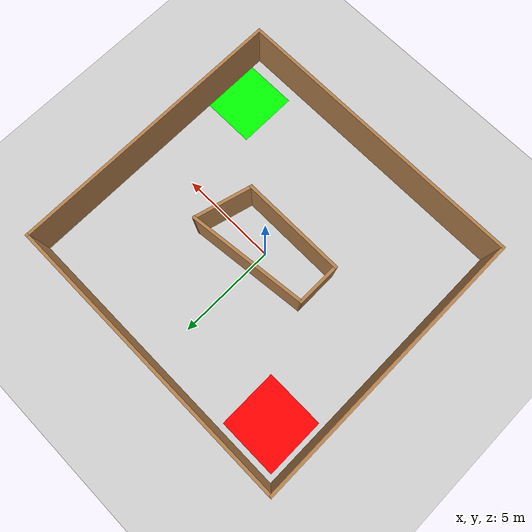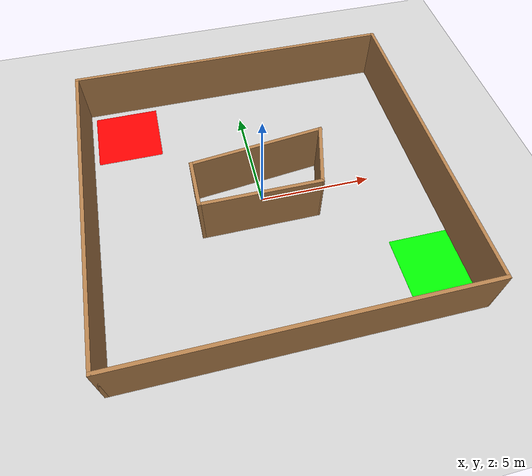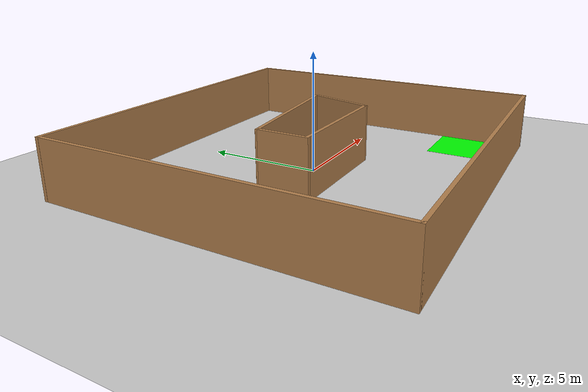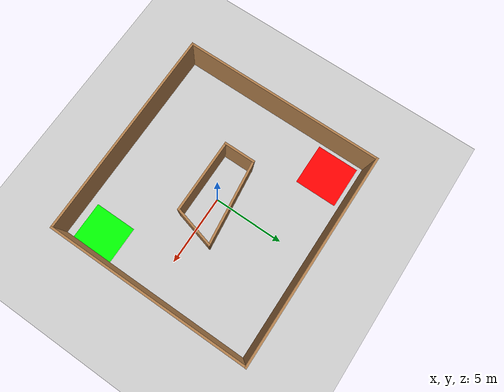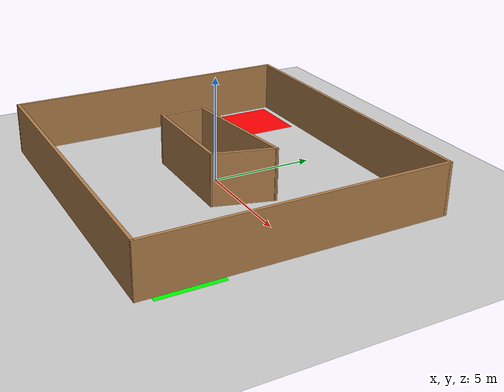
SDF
<sdf version="1.6">
 <world name="default">
  <light name="sun" type="directional">
   <pose>0 0 10 0 -0 0</pose>
   <diffuse>0.8 0.8 0.8 1</diffuse>
   <specular>0.1 0.1 0.1 1</specular>
   <attenuation>
    <range>1000</range>
    <constant>0.9</constant>
    <linear>0.01</linear>
    <quadratic>0.001</quadratic>
   </attenuation>
   <direction>-0.5 0.5 -1</direction>
  </light>
  <model name="ground_plane">
   <static>1</static>
   <link name="link">
    <collision name="collision">
     <geometry><plane><normal>0 0 1</normal><size>100 100</size></plane></geometry>
     <surface><friction><ode><mu>100</mu><mu2>50</mu2></ode></friction></surface>
    </collision>
    <visual name="visual">
     <cast_shadows>0</cast_shadows>
     <geometry><plane><normal>0 0 1</normal><size>100 100</size></plane></geometry>
     <material>
      <script><uri>file://media/materials/scripts/gazebo.material</uri><name>Gazebo/Grey</name></script>
     </material>
    </visual>
   </link>
  </model>
  <gravity>0 0 -9.8</gravity>
  <magnetic_field>6e-06 2.3e-05 -4.2e-05</magnetic_field>
  <atmosphere type="adiabatic"/>
  <physics name="default_physics" default="0" type="ode">
   <max_step_size>0.001</max_step_size>
   <real_time_factor>1</real_time_factor>
   <real_time_update_rate>1000</real_time_update_rate>
  </physics>
  <scene><ambient>0.4 0.4 0.4 1</ambient><background>0.7 0.7 0.7 1</background><shadows>1</shadows></scene>
  <spherical_coordinates>
   <surface_model>EARTH_WGS84</surface_model>
   <latitude_deg>0</latitude_deg>
   <longitude_deg>0</longitude_deg>
   <elevation>0</elevation>
   <heading_deg>0</heading_deg>
  </spherical_coordinates>
  <model name="pool">
   <pose>0.03268 0.020167 0 0 -0 0</pose>
   <link name="Wall_0">
    <collision name="Wall_0_Collision">
     <geometry><box><size>14.25 0.15 2.5</size></box></geometry>
     <pose>0 0 1.25 0 -0 0</pose>
    </collision>
    <visual name="Wall_0_Visual">
     <pose>0 0 1.25 0 -0 0</pose>
     <geometry><box><size>14.25 0.15 2.5</size></box></geometry>
     <material>
      <script><uri>file://media/materials/scripts/gazebo.material</uri><name>Gazebo/Wood</name></script>
      <ambient>1 1 1 1</ambient>
     </material>
    </visual>
    <pose>-7.4262 0 0 0 0 -1.5708</pose>
   </link>
   <link name="Wall_2">
    <collision name="Wall_2_Collision">
     <geometry><box><size>15.0081 0.15 2.5</size></box></geometry>
     <pose>0 0 1.25 0 -0 0</pose>
    </collision>
    <visual name="Wall_2_Visual">
     <pose>0 0 1.25 0 -0 0</pose>
     <geometry><box><size>15.0081 0.15 2.5</size></box></geometry>
     <material>
      <script><uri>file://media/materials/scripts/gazebo.material</uri><name>Gazebo/Wood</name></script>
      <ambient>1 1 1 1</ambient>
     </material>
    </visual>
    <pose>0 7.05 0 0 -0 0</pose>
   </link>
   <link name="Wall_4">
    <collision name="Wall_4_Collision">
     <geometry><box><size>15 0.15 2.5</size></box></geometry>
     <pose>0 0 1.25 0 -0 0</pose>
    </collision>
    <visual name="Wall_4_Visual">
     <pose>0 0 1.25 0 -0 0</pose>
     <geometry><box><size>15 0.15 2.5</size></box></geometry>
     <material>
      <script><uri>file://media/materials/scripts/gazebo.material</uri><name>Gazebo/Wood</name></script>
      <ambient>1 1 1 1</ambient>
     </material>
    </visual>
    <pose>-0.001204 -7.05 0 0 -0 0</pose>
   </link>
   <link name="Wall_5">
    <collision name="Wall_5_Collision">
     <geometry><box><size>14.25 0.15 2.5</size></box></geometry>
     <pose>0 0 1.25 0 -0 0</pose>
    </collision>
    <visual name="Wall_5_Visual">
     <pose>0 0 1.25 0 -0 0</pose>
     <geometry><box><size>14.25 0.15 2.5</size></box></geometry>
     <material>
      <script><uri>file://media/materials/scripts/gazebo.material</uri><name>Gazebo/Wood</name></script>
      <ambient>1 1 1 1</ambient>
     </material>
    </visual>
    <pose>7.4238 0 0 0 -0 1.5708</pose>
   </link>
   <static>1</static>
  </model>
  <model name="Untitled">
   <pose>0.03137 0.047561 0 0 -0 0</pose>
   <link name="Wall_0">
    <collision name="Wall_0_Collision">
     <geometry><box><size>2.25 0.15 2.5</size></box></geometry>
     <pose>0 0 1.25 0 -0 0</pose>
    </collision>
    <visual name="Wall_0_Visual">
     <pose>0 0 1.25 0 -0 0</pose>
     <geometry><box><size>2.25 0.15 2.5</size></box></geometry>
     <material>
      <script><uri>file://media/materials/scripts/gazebo.material</uri><name>Gazebo/Wood</name></script>
      <ambient>1 1 1 1</ambient>
     </material>
    </visual>
    <pose>-2.92331 -0.326444 0 0 0 -1.5708</pose>
   </link>
   <link name="Wall_1">
    <collision name="Wall_1_Collision">
     <geometry><box><size>5.25 0.15 2.5</size></box></geometry>
     <pose>0 0 1.25 0 -0 0</pose>
    </collision>
    <visual name="Wall_1_Visual">
     <pose>0 0 1.25 0 -0 0</pose>
     <geometry><box><size>5.25 0.15 2.5</size></box></geometry>
     <material>
      <script><uri>file://media/materials/scripts/gazebo.material</uri><name>Gazebo/Wood</name></script>
      <ambient>1 1 1 1</ambient>
     </material>
    </visual>
    <pose>-0.373309 -1.37644 0 0 -0 0</pose>
   </link>
   <link name="Wall_2">
    <collision name="Wall_2_Collision">
     <geometry><box><size>3 0.15 2.5</size></box></geometry>
     <pose>0 0 1.25 0 -0 0</pose>
    </collision>
    <visual name="Wall_2_Visual">
     <pose>0 0 1.25 0 -0 0</pose>
     <geometry><box><size>3 0.15 2.5</size></box></geometry>
     <material>
      <script><uri>file://media/materials/scripts/gazebo.material</uri><name>Gazebo/Wood</name></script>
      <ambient>1 1 1 1</ambient>
     </material>
    </visual>
    <pose>2.54551 0 0 0 -0 1.309</pose>
   </link>
   <link name="Wall_3">
    <collision name="Wall_3_Collision">
     <geometry><box><size>6.02403 0.15 2.5</size></box></geometry>
     <pose>0 0 1.25 0 -0 0</pose>
    </collision>
    <visual name="Wall_3_Visual">
     <pose>0 0 1.25 0 -0 0</pose>
     <geometry><box><size>6.02403 0.15 2.5</size></box></geometry>
     <material>
      <script><uri>file://media/materials/scripts/gazebo.material</uri><name>Gazebo/Wood</name></script>
      <ambient>1 1 1 1</ambient>
     </material>
    </visual>
    <pose>-0.004492 1.05 0 0 0 -3.03021</pose>
   </link>
   <static>1</static>
  </model>
  <model name="goal_box">
   <pose>6.26085 -4.92798 -4.1e-05 -0.000361 -0 -1.57079</pose>
   <link name="goal_box">
    <visual name="goal_box">
     <pose>0 0 0.0005 0 -0 0</pose>
     <geometry><box><size>3 3 0.001</size></box></geometry>
     <material>
      <script><uri>file://media/materials/scripts/gazebo.material</uri><name>Gazebo/Grey</name></script>
      <ambient>0 1 0 1</ambient>
     </material>
    </visual>
    <collision name="collision"><geometry><box><size>3 3 0.001</size></box></geometry></collision>
    <inertial>
     <inertia><ixx>1</ixx><ixy>0</ixy><ixz>0</ixz><iyy>1</iyy><iyz>0</iyz><izz>1</izz></inertia>
     <mass>1</mass>
    </inertial>
   </link>
   <static>0</static>
  </model>
  <model name="goal_box_0">
   <pose>-5.58578 5.21847 0.0005 0 0 -1.5708</pose>
   <link name="goal_box">
    <visual name="goal_box">
     <pose>0 0 0.0005 0 -0 0</pose>
     <geometry><box><size>3 3 0.001</size></box></geometry>
     <material>
      <script><uri>file://media/materials/scripts/gazebo.material</uri><name>Gazebo/Grey</name></script>
      <ambient>1 0 0 1</ambient>
     </material>
    </visual>
    <collision name="collision"><geometry><box><size>3 3 0.001</size></box></geometry></collision>
    <inertial>
     <inertia><ixx>1</ixx><ixy>0</ixy><ixz>0</ixz><iyy>1</iyy><iyz>0</iyz><izz>1</izz></inertia>
     <mass>1</mass>
    </inertial>
   </link>
   <static>0</static>
  </model>
 </world>
</sdf>
